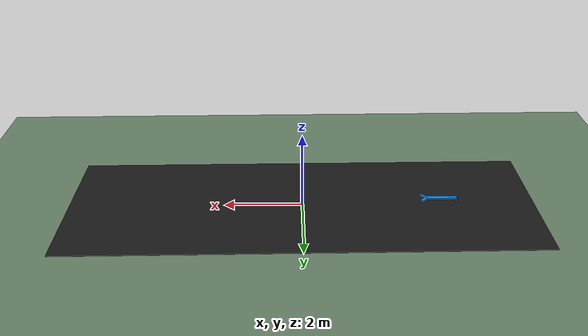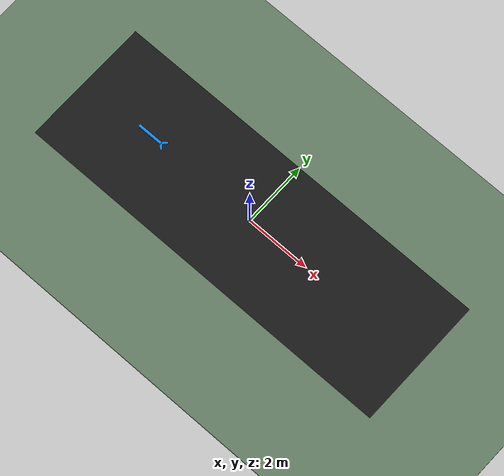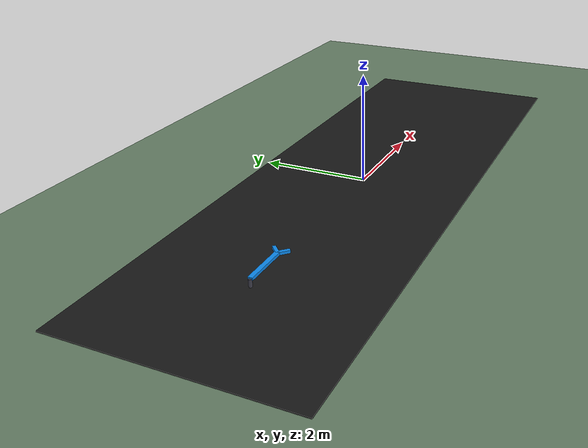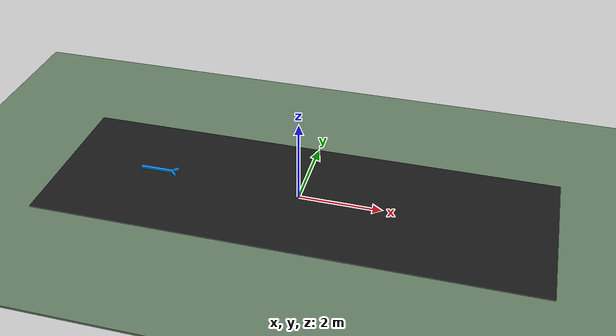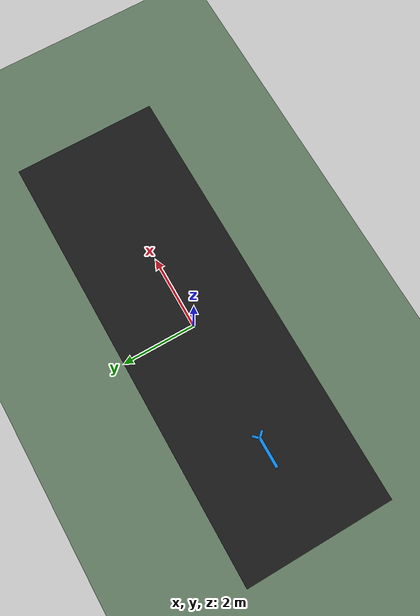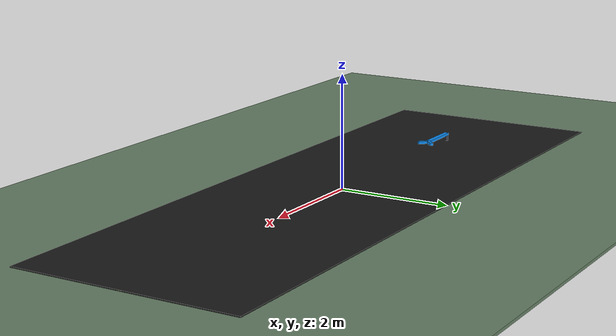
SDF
<?xml version="1.0" ?>
<sdf version="1.6">
  <world name="default">
    <light type="directional" name="sun">
      <pose>0 0 10 0 0 0</pose>
      <diffuse>0.8 0.8 0.8 1</diffuse>
      <specular>0.2 0.2 0.2 1</specular>
      <attenuation>
        <range>200</range>
        <constant>0.9</constant>
        <linear>0.01</linear>
        <quadratic>0.001</quadratic>
      </attenuation>
      <direction>-0.5 0.5 -1</direction>
      <cast_shadows>true</cast_shadows>
    </light>

    <model name="ground_plane_local">
      <static>true</static>
      <pose>0 0 -0.025 0 0 0</pose>
      <link name="ground_link">
        <collision name="ground_collision">
          <geometry>
            <box>
              <size>60 60 0.05</size>
            </box>
          </geometry>
        </collision>
        <visual name="ground_visual">
          <geometry>
            <box>
              <size>60 60 0.05</size>
            </box>
          </geometry>
          <material>
            <ambient>0.35 0.45 0.35 1</ambient>
            <diffuse>0.4 0.5 0.4 1</diffuse>
          </material>
        </visual>
      </link>
    </model>

    <physics name="default_physics" type="ode">
      <real_time_factor>1.0</real_time_factor>
      <real_time_update_rate>1000.0</real_time_update_rate>
    </physics>

    <!-- Rectangular tramo que hace de pista sencilla -->
    <model name="asphalt_track">
      <static>true</static>
      <pose>0 0 0 0 0 0</pose>
      <link name="road">
        <collision name="road_collision">
          <geometry>
            <box>
              <size>12 4 0.02</size>
            </box>
          </geometry>
          <pose>0 0 0.01 0 0 0</pose>
        </collision>
        <visual name="road_visual">
          <geometry>
            <box>
              <size>12 4 0.02</size>
            </box>
          </geometry>
          <pose>0 0 0.01 0 0 0</pose>
          <material>
            <ambient>0.08 0.08 0.08 1</ambient>
            <diffuse>0.1 0.1 0.1 1</diffuse>
            <specular>0.05 0.05 0.05 1</specular>
          </material>
        </visual>
        <!-- Línea central de pista -->
        <visual name="center_line">
          <geometry>
            <box>
              <size>12 0.05 0.005</size>
            </box>
          </geometry>
          <pose>0 0 0.012 0 0 0</pose>
          <material>
            <ambient>0.9 0.9 0.1 1</ambient>
            <diffuse>1 1 0.2 1</diffuse>
            <specular>0.2 0.2 0.2 1</specular>
          </material>
        </visual>
      </link>
    </model>

    <!-- Indicador de direccion con forma de flecha -->
    <model name="arrow_marker">
      <static>true</static>
      <pose>-4 0 0 0 0 0</pose>
      <link name="arrow">
        <!-- base -->
        <collision name="stand_collision">
          <geometry>
            <cylinder>
              <radius>0.03</radius>
              <length>0.15</length>
            </cylinder>
          </geometry>
          <pose>0 0 0.075 0 0 0</pose>
        </collision>
        <visual name="stand_visual">
          <geometry>
            <cylinder>
              <radius>0.03</radius>
              <length>0.15</length>
            </cylinder>
          </geometry>
          <pose>0 0 0.075 0 0 0</pose>
          <material>
            <ambient>0.2 0.2 0.25 1</ambient>
            <diffuse>0.25 0.25 0.3 1</diffuse>
          </material>
        </visual>

        <!-- flecha cuerpo -->
        <visual name="arrow_shaft">
          <geometry>
            <box>
              <size>0.8 0.08 0.05</size>
            </box>
          </geometry>
          <pose>0.4 0 0.15 0 0 0</pose>
          <material>
            <ambient>0 0.45 0.8 1</ambient>
            <diffuse>0.05 0.55 0.95 1</diffuse>
          </material>
        </visual>
        <!-- cabeza de flecha aproximada con dos cajas -->
        <visual name="arrow_head_left">
          <geometry>
            <box>
              <size>0.2 0.06 0.05</size>
            </box>
          </geometry>
          <pose>0.85 0.07 0.15 0 0 0.785398</pose>
          <material>
            <ambient>0 0.45 0.8 1</ambient>
            <diffuse>0.05 0.55 0.95 1</diffuse>
          </material>
        </visual>
        <visual name="arrow_head_right">
          <geometry>
            <box>
              <size>0.2 0.06 0.05</size>
            </box>
          </geometry>
          <pose>0.85 -0.07 0.15 0 0 -0.785398</pose>
          <material>
            <ambient>0 0.45 0.8 1</ambient>
            <diffuse>0.05 0.55 0.95 1</diffuse>
          </material>
        </visual>
      </link>
    </model>

    <gui fullscreen="0">
      <camera name="user_camera">
        <pose>2.0 -4.0 2.0 0.0 0.5 1.57</pose>
        <view_controller>orbit</view_controller>
      </camera>
    </gui>
  </world>
</sdf>
